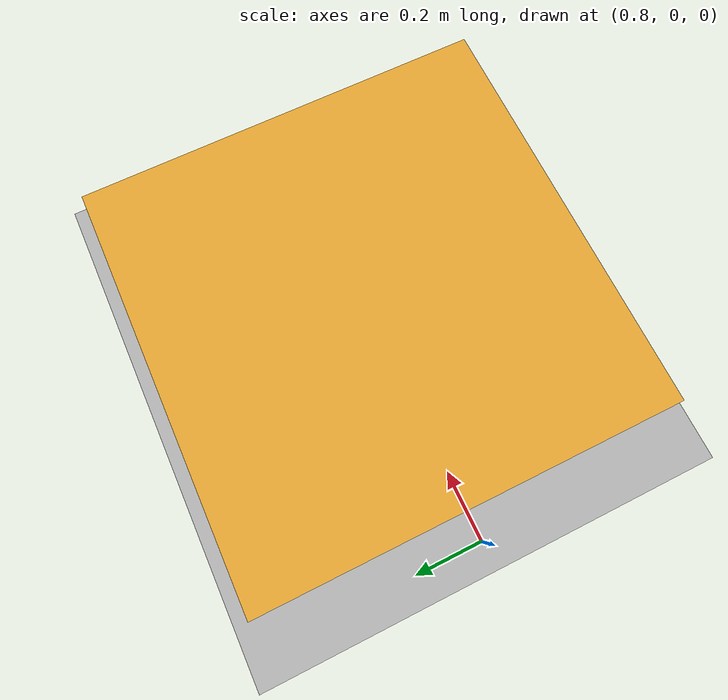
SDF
<?xml version="1.0" ?>
<sdf version="1.9">
  <world name="lift_box_world">
    <gravity>0 0 -9.81</gravity>

    <plugin
      filename="gz-sim-physics-system"
      name="gz::sim::systems::Physics" />
    <plugin
      filename="gz-sim-user-commands-system"
      name="gz::sim::systems::UserCommands" />
    <plugin
      filename="gz-sim-scene-broadcaster-system"
      name="gz::sim::systems::SceneBroadcaster" />

    <light name="sun" type="directional">
      <pose>0 0 10 0 0 0</pose>
      <cast_shadows>true</cast_shadows>
      <diffuse>0.8 0.8 0.8 1</diffuse>
      <specular>0.2 0.2 0.2 1</specular>
      <attenuation>
        <range>1000</range>
        <constant>0.9</constant>
        <linear>0.01</linear>
        <quadratic>0.001</quadratic>
      </attenuation>
      <direction>-0.5 0.1 -0.9</direction>
    </light>

    <model name="ground_plane">
      <static>true</static>
      <link name="link">
        <collision name="collision">
          <geometry>
            <plane>
              <normal>0 0 1</normal>
              <size>50 50</size>
            </plane>
          </geometry>
        </collision>
        <visual name="visual">
          <geometry>
            <plane>
              <normal>0 0 1</normal>
              <size>50 50</size>
            </plane>
          </geometry>
          <material>
            <ambient>0.7 0.7 0.7 1</ambient>
            <diffuse>0.7 0.7 0.7 1</diffuse>
            <specular>0.2 0.2 0.2 1</specular>
          </material>
        </visual>
      </link>
    </model>

    <model name="obstacle_box_1200_1200_200">
      <static>true</static>
      <pose>1.5 0 0.1 0 0 0</pose>
      <link name="link">
        <collision name="collision">
          <geometry>
            <box>
              <size>1.2 1.2 0.2</size>
            </box>
          </geometry>
        </collision>
        <visual name="visual">
          <geometry>
            <box>
              <size>1.2 1.2 0.2</size>
            </box>
          </geometry>
          <material>
            <ambient>0.9 0.65 0.2 1</ambient>
            <diffuse>0.9 0.65 0.2 1</diffuse>
            <specular>0.1 0.1 0.1 1</specular>
          </material>
        </visual>
      </link>
    </model>
  </world>
</sdf>
